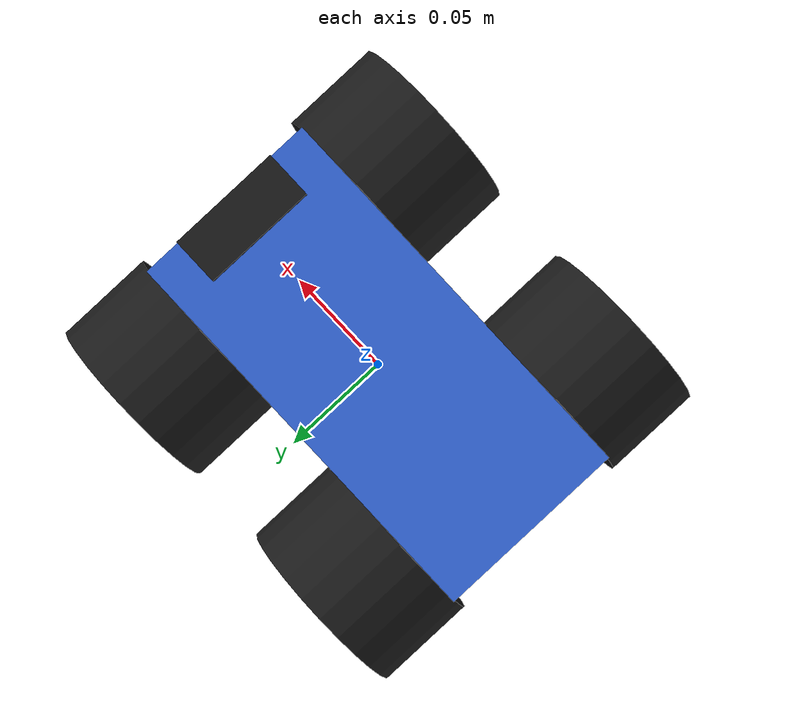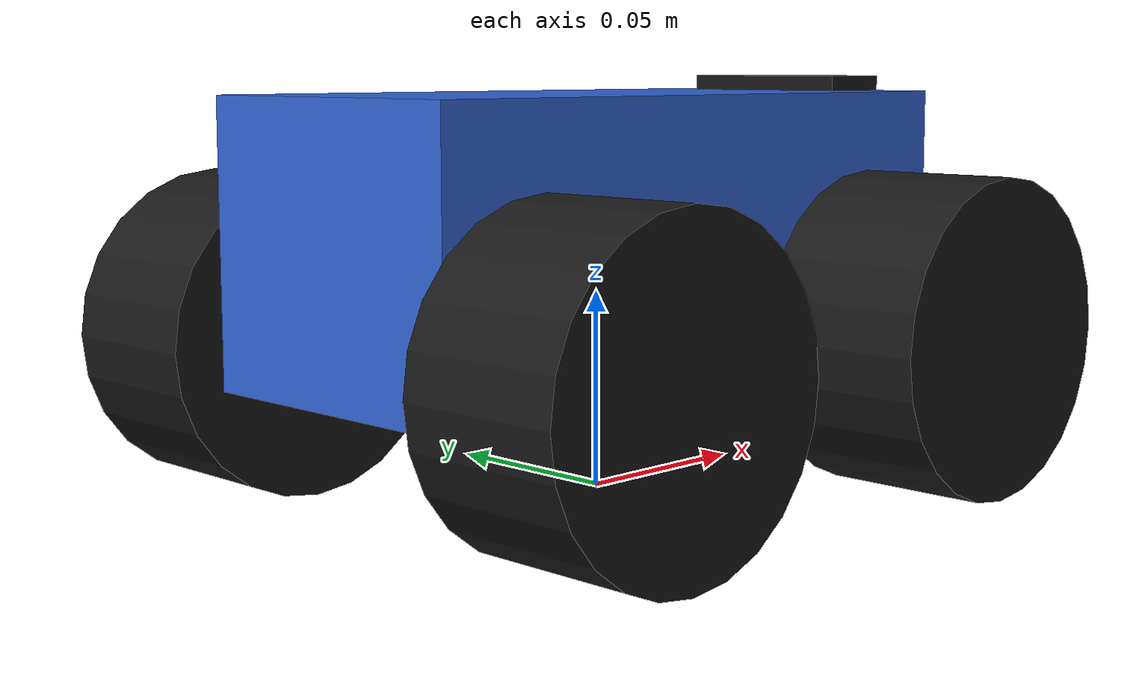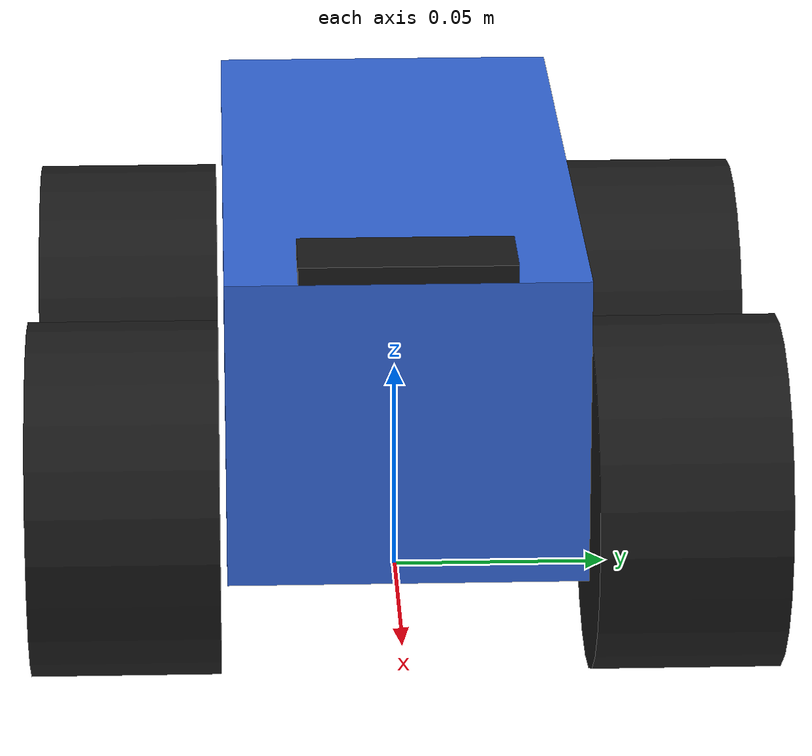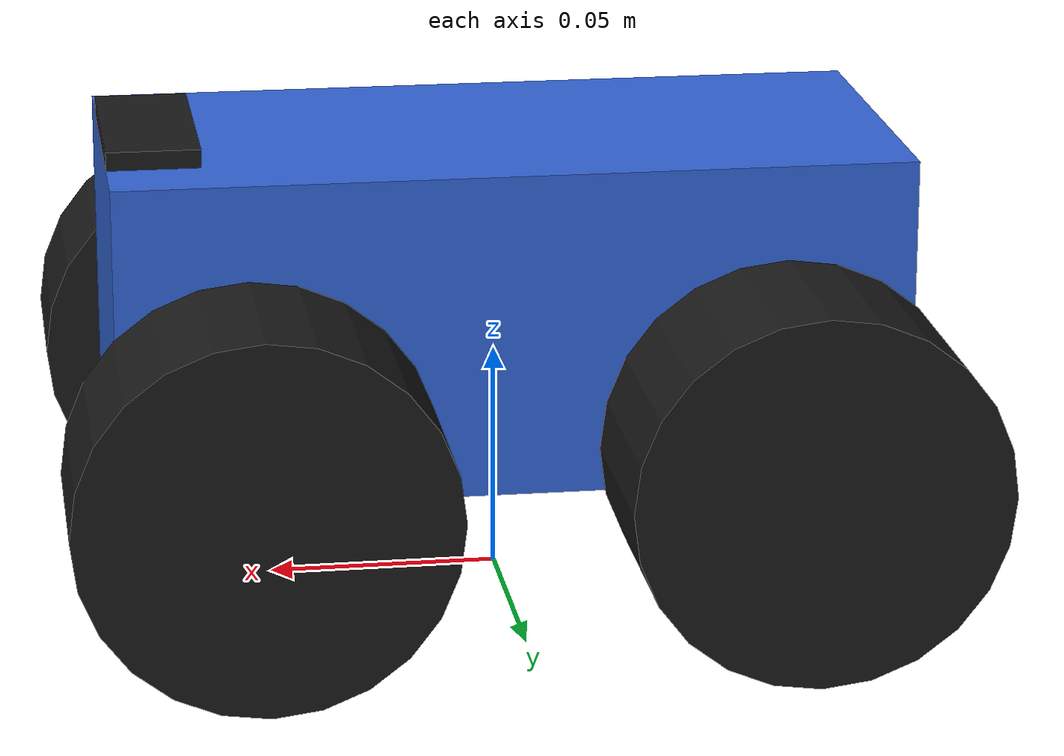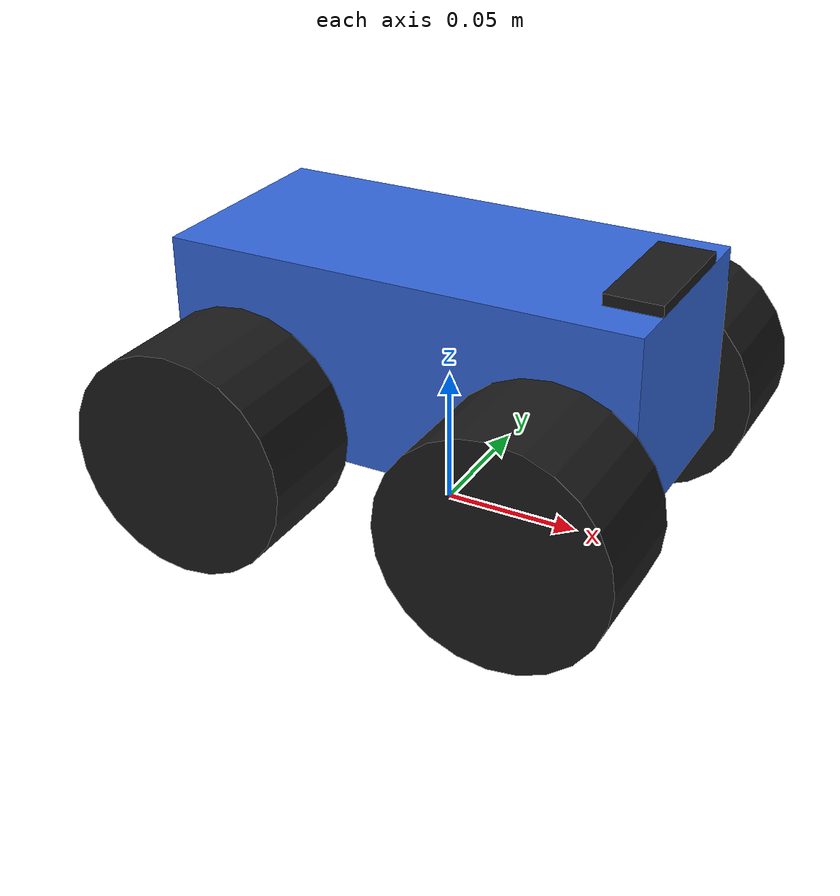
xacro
<?xml version="1.0"?>
<robot name="wave_rover" xmlns:xacro="http://www.ros.org/wiki/xacro">
  <xacro:include filename="$(find arise_sim)/urdf/skid_steer.urdf.xacro"/>

  <xacro:arg name="name" default="wave_rover"/>
  <xacro:arg name="cmd_vel_topic" default="/wave_rover/cmd_vel"/>
  <xacro:arg name="ground_truth_topic" default="/sim/wave_rover/ground_truth"/>
  <xacro:arg name="ground_truth_rate" default="120"/>

  <xacro:skid_steer
      name="$(arg name)"
      chassis_x="0.17" chassis_y="0.08" chassis_z="0.07" chassis_height="0.065"
      chassis_mass="0.66"
      wheel_radius="0.04" wheel_width="0.0425" wheel_mass="0.05"
      wheelbase="0.114" track="0.1255"
      max_linear="1.25" max_angular="6.0"
      cmd_vel_topic="$(arg cmd_vel_topic)"
      ground_truth_topic="$(arg ground_truth_topic)"
      ground_truth_rate="$(arg ground_truth_rate)"
      chassis_color="0.2 0.4 0.85 1"/>
</robot>

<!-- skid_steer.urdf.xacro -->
<robot xmlns:xacro="http://www.ros.org/wiki/xacro">

  <xacro:macro name="skid_steer" params="
      name
      chassis_x chassis_y chassis_z chassis_height chassis_mass
      wheel_radius wheel_width wheel_mass wheelbase track
      max_linear max_angular
      cmd_vel_topic ground_truth_topic ground_truth_rate
      chassis_color">

    <xacro:property name="PI" value="3.141592653589793"/>

    <material name="${name}_chassis_color"><color rgba="${chassis_color}"/></material>
    <material name="${name}_wheel_color"><color rgba="0.1 0.1 0.1 1"/></material>

    <link name="base_link">
      <visual>
        <origin xyz="0 0 ${chassis_height}"/>
        <geometry><box size="${chassis_x} ${chassis_y} ${chassis_z}"/></geometry>
        <material name="${name}_chassis_color"/>
      </visual>
      <!-- Small front marker so you can see which way the robot faces. -->
      <visual>
        <origin xyz="${chassis_x/2 - 0.01} 0 ${chassis_height + chassis_z/2 + 0.002}"/>
        <geometry><box size="0.02 ${chassis_y*0.6} 0.004"/></geometry>
        <material name="${name}_wheel_color"/>
      </visual>
      <collision>
        <origin xyz="0 0 ${chassis_height}"/>
        <geometry><box size="${chassis_x} ${chassis_y} ${chassis_z}"/></geometry>
      </collision>
      <inertial>
        <origin xyz="0 0 ${chassis_height}"/>
        <mass value="${chassis_mass}"/>
        <inertia
          ixx="${chassis_mass/12*(chassis_y*chassis_y + chassis_z*chassis_z)}" ixy="0" ixz="0"
          iyy="${chassis_mass/12*(chassis_x*chassis_x + chassis_z*chassis_z)}" iyz="0"
          izz="${chassis_mass/12*(chassis_x*chassis_x + chassis_y*chassis_y)}"/>
      </inertial>
    </link>

    <xacro:macro name="wheel" params="pos x y">
      <link name="wheel_${pos}">
        <visual>
          <origin rpy="${PI/2} 0 0"/>
          <geometry><cylinder radius="${wheel_radius}" length="${wheel_width}"/></geometry>
          <material name="${name}_wheel_color"/>
        </visual>
        <collision>
          <origin rpy="${PI/2} 0 0"/>
          <geometry><cylinder radius="${wheel_radius}" length="${wheel_width}"/></geometry>
        </collision>
        <inertial>
          <mass value="${wheel_mass}"/>
          <inertia
            ixx="${wheel_mass/12*(3*wheel_radius*wheel_radius + wheel_width*wheel_width)}" ixy="0" ixz="0"
            iyy="${wheel_mass/2*wheel_radius*wheel_radius}" iyz="0"
            izz="${wheel_mass/12*(3*wheel_radius*wheel_radius + wheel_width*wheel_width)}"/>
        </inertial>
      </link>
      <joint name="wheel_${pos}_joint" type="continuous">
        <parent link="base_link"/>
        <child link="wheel_${pos}"/>
        <origin xyz="${x} ${y} ${wheel_radius}"/>
        <axis xyz="0 1 0"/>
      </joint>
      <gazebo reference="wheel_${pos}">
        <mu1>1.0</mu1>
        <mu2>1.0</mu2>
      </gazebo>
    </xacro:macro>

    <xacro:wheel pos="front_left"  x="${wheelbase/2}"  y="${track/2}"/>
    <xacro:wheel pos="rear_left"   x="${-wheelbase/2}" y="${track/2}"/>
    <xacro:wheel pos="front_right" x="${wheelbase/2}"  y="${-track/2}"/>
    <xacro:wheel pos="rear_right"  x="${-wheelbase/2}" y="${-track/2}"/>

    <gazebo>
      <plugin filename="gz-sim-diff-drive-system" name="gz::sim::systems::DiffDrive">
        <left_joint>wheel_front_left_joint</left_joint>
        <left_joint>wheel_rear_left_joint</left_joint>
        <right_joint>wheel_front_right_joint</right_joint>
        <right_joint>wheel_rear_right_joint</right_joint>
        <wheel_separation>${track}</wheel_separation>
        <wheel_radius>${wheel_radius}</wheel_radius>
        <max_linear_velocity>${max_linear}</max_linear_velocity>
        <max_angular_velocity>${max_angular}</max_angular_velocity>
        <topic>${cmd_vel_topic}</topic>
        <!-- Wheel odometry is published inside Gazebo but not bridged to ROS. -->
        <odom_topic>/sim/${name}/wheel_odom</odom_topic>
        <tf_topic>/sim/${name}/wheel_tf</tf_topic>
        <frame_id>${name}/odom</frame_id>
        <child_frame_id>${name}/base_link</child_frame_id>
      </plugin>

      <plugin filename="gz-sim-odometry-publisher-system" name="gz::sim::systems::OdometryPublisher">
        <odom_frame>world</odom_frame>
        <robot_base_frame>${name}/base_link</robot_base_frame>
        <odom_topic>${ground_truth_topic}</odom_topic>
        <tf_topic>/sim/${name}/ground_truth_tf</tf_topic>
        <odom_publish_frequency>${ground_truth_rate}</odom_publish_frequency>
        <dimensions>3</dimensions>
      </plugin>
    </gazebo>

  </xacro:macro>
</robot>
